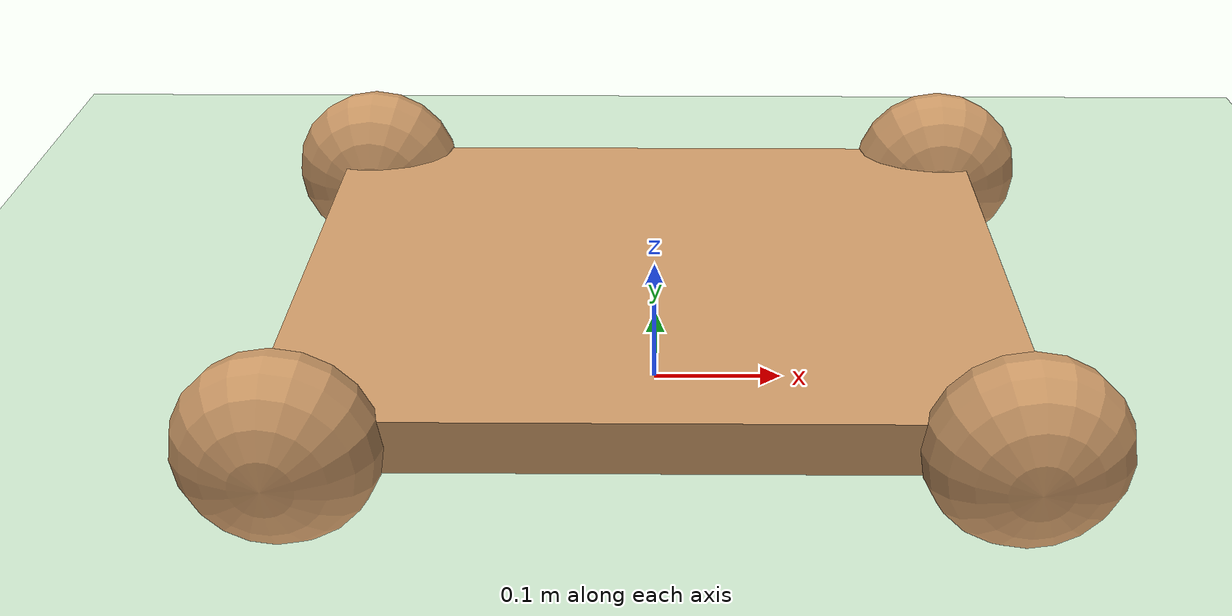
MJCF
<mujoco model="test">
    <option timestep="0.002" integrator="RK4"/>
    <compiler angle="radian" coordinate="local" inertiafromgeom="true"/>
    <size njmax="500" nconmax="100" />
    <default>
       <joint armature="0" damping="0" limited="false"/>
       <geom friction="1 0.5 0.5" rgba="0.8 0.6 0.4 1"/>
   </default>

   <asset>
        <texture builtin="gradient" height="100" rgb1="1 1 1" rgb2="0 0 0" type="skybox" width="100"/>
        <texture builtin="flat" height="1278" mark="cross" markrgb="1 1 1" name="texgeom" random="0.01" rgb1="0.8 0.6 0.4" rgb2="0.8 0.6 0.4" type="cube" width="127"/>
        <texture builtin="checker" height="100" name="texplane" rgb1="0 0 0" rgb2="0.8 0.8 0.8" type="2d" width="100"/>
        <material name="MatPlane" reflectance="0.5" shininess="1" specular="1" texrepeat="60 60" texture="texplane"/>
        <material name="geom" texture="texgeom" texuniform="true"/>
    </asset>

    <worldbody>
        <light cutoff="100" diffuse="1 1 1" dir="-0 0 -1.3" directional="true" exponent="1" pos="0 0 1.3" specular=".1 .1 .1"/>
        <geom conaffinity="1" condim="3" material="MatPlane" name="floor" pos="0 0 0" rgba="0.8 0.9 0.8 1" size="5 5 0.1" type="plane"/>

        <body name="base_link" pos="0 0 0">
            <joint type="free"/>
            <inertial pos="0 0 0" mass="1" diaginertia="0.166667 0.166667 0.166667" />
            <geom size="0.265 0.215 0.02" pos="0 0 0.08" type="box" />
            <body name="leftw1" pos="0.245 0.215 0.08" quat="0.707141 0.707073 0 0">
                <inertial pos="0 0 0" mass="1" diaginertia="0.145833 0.145833 0.125" />
                <joint name="base_link_JOINT_0" pos="0 0 0" axis="0 0 -1" />
                <geom size="0.07 0.07 0.05" type="ellipsoid" />
            </body>
            <body name="leftw2" pos="-0.245 0.215 0.08" quat="0.707141 0.707073 0 0">
                <inertial pos="0 0 0" mass="1" diaginertia="0.145833 0.145833 0.125" />
                <joint name="base_link_JOINT_1" pos="0 0 0" axis="0 0 -1" />
                <geom size="0.07 0.07 0.05" type="ellipsoid" />
            </body>
            <body name="rightw1" pos="0.245 -0.215 0.08" quat="0.707141 0.707073 0 0">
                <inertial pos="0 0 0" mass="1" diaginertia="0.145833 0.145833 0.125" />
                <joint name="base_link_JOINT_2" pos="0 0 0" axis="0 0 -1" />
                <geom size="0.07 0.07 0.05" type="ellipsoid" />
            </body>
            <body name="rightw2" pos="-0.245 -0.215 0.08" quat="0.707141 0.707073 0 0">
                <inertial pos="0 0 0" mass="1" diaginertia="0.145833 0.145833 0.125" />
                <joint name="base_link_JOINT_3" pos="0 0 0" axis="0 0 -1" />
                <geom size="0.07 0.07 0.05" type="ellipsoid" />
            </body>
        </body>
    </worldbody>

    <actuator>
        <motor joint="base_link_JOINT_0" ctrlrange="-.1 .1" ctrllimited="true"/>
        <motor joint="base_link_JOINT_1" ctrlrange="-.1 .1" ctrllimited="true"/>
        <motor joint="base_link_JOINT_2" ctrlrange="-.1 .1" ctrllimited="true"/>
        <motor joint="base_link_JOINT_3" ctrlrange="-.1 .1" ctrllimited="true"/>
    </actuator>

</mujoco>
